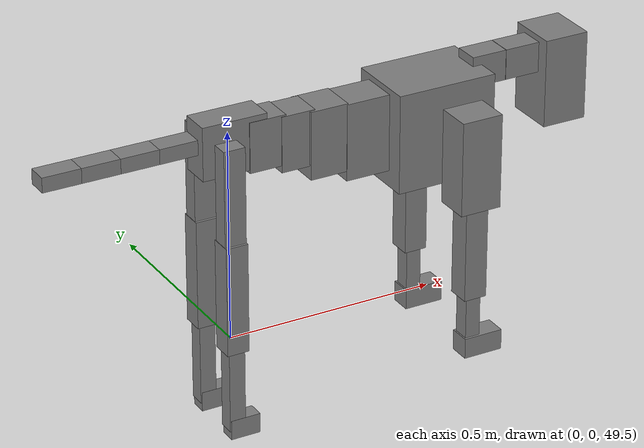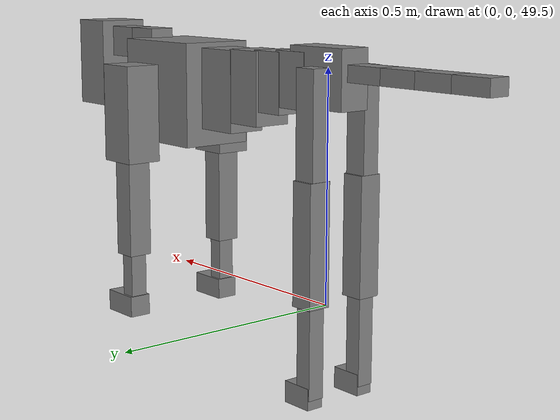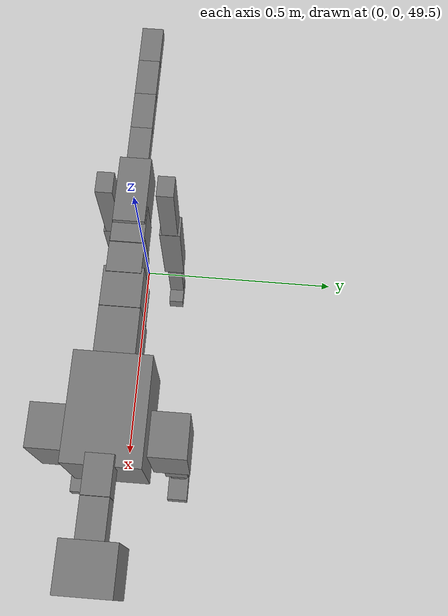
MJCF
<mujoco model="dog">

    <default>
        <joint armature="0.02" stiffness="1" damping="0.2" limited="true"/>
        <geom condim="3" friction="1 0.05 0.05" margin="0.01"/>
        <motor ctrllimited="true" ctrlrange="-1.0 1.0" forcelimited="true" gear="50"/>
    </default>

    <compiler inertiafromgeom="true" angle="radian"/>

    <option timestep="0.016" iterations="50" tolerance="1e-10" solver="Newton" jacobian="dense" cone="pyramidal"/>

    <size nconmax="20000" njmax="60000" nstack="5000000"/>
    <visual>
        <map force="0.1" zfar="30"/>
        <rgba haze="0.15 0.25 0.35 1"/>
        <quality shadowsize="2048"/>
        <global offwidth="800" offheight="800"/>
    </visual>

    <asset>
        <texture type="skybox" builtin="gradient" rgb1="0.3 0.5 0.7" rgb2="0 0 0" width="512" height="512"/>
        <texture name="texplane" type="2d" builtin="checker" rgb1=".2 .3 .4" rgb2=".1 0.15 0.2" width="512" height="512"
                 mark="cross" markrgb=".8 .8 .8"/>
        <texture name="texgeom" type="cube" builtin="flat" mark="cross" width="127" height="1278" rgb1="0.8 0.6 0.4"
                 rgb2="0.8 0.6 0.4" markrgb="1 1 1" random="0.01"/>

        <material name="matplane" reflectance="0.3" texture="texplane" texrepeat="1 1" texuniform="true"/>
        <material name="matgeom" texture="texgeom" texuniform="true" rgba="0.8 0.6 .4 1"/>
    </asset>

    <worldbody>
        <geom name="floor" pos="0 0 0" size="0 0 .25" type="plane" material="matplane" condim="3"/>

        <light directional="false" diffuse=".2 .2 .2" specular="0 0 0" pos="0 0 5" dir="0 0 -1" castshadow="false"/>
        <light mode="targetbodycom" target="torso" directional="false" diffuse=".8 .8 .8" specular="0.3 0.3 0.3"
               pos="0 0 4.0" dir="0 0 -1"/>

        <body name="root" pos="0 0 50">
            <freejoint name="root_1"/>
            <geom type="box" pos="0 0 -0.02" size="0.0774  0.0358  0.063" density="2030"/>

            <body name="spine1" pos="0.054 0 0">
                <joint name="spine1_y" axis="0 1 0" range="0 0.7" limited="true"/>
                <geom type="box" pos="0.02375 0 -0.03" size="0.04375  0.0375  0.05985" density="2030"/>

                <body name="spine2" pos="0.0612 0 0">
                    <joint name="spine2_y" axis="0 1 0" range="-0.15 0.15" limited="true"/>
                    <geom type="box" pos="0.03555  0  -0.04" size="0.04055  0.039  0.06615" density="2030"/>

                    <body name="spine3" pos="0.0730 0 0">
                        <joint name="spine3_y" axis="0 1 0" range="-0.15 0.15" limited="true"/>
                        <geom type="box" pos="0.03555  0  -0.057" size="0.04555  0.0445  0.081" density="2030"/>

                        <body name="spine4" pos="0.0780 0 0">
                            <joint name="spine4_y" axis="0 1 0" range="-0.15 0.15" limited="true"/>
                            <geom type="box" pos="0.05265  0  -0.07" size="0.05265  0.045  0.09135" density="2030"/>

                            <body name="torso" pos="0.1082 0 0">
                                <joint name="torso_y" axis="0 1 0" range="-0.15 0.15" limited="true"/>
                                <geom type="box" pos="0.11925  0  -0.085" size="0.11925  0.085  0.11745"
                                      density="2030"/>

                                <body name="neck1" pos="0.2160  0   0.0180">
                                    <joint name="neck1_y" axis="0 1 0" range="-1.2  -1" limited="true"/>
                                    <geom type="box" pos="0.0423  0  0" size="0.0423  0.03  0.036" density="2325"/>

                                    <body name="neck2" pos="0.0853  0  0">
                                        <joint name="neck2_y" axis="0 1 0" range="0.1  0" limited="true"/>
                                        <geom type="box" pos="0.0423  0  0" size="0.0423  0.03  0.036" density="2325"/>

                                        <body name="head" pos="0.0853  0  0">
                                            <joint name="head_y" axis="0 1 0" range="-0.3  -0.2" limited="true"/>
                                            <geom type="box" pos="0.0531  0  -0.055" size="0.0531  0.06  0.1044"
                                                  density="4030"/>

                                        </body>
                                    </body>
                                </body>

                                <body name="front_shoulder" pos="0.156  0   -0.0480">
                                    <joint name="front_shoulder_y" axis="0 1 0" range="-1 1.5" limited="true"/>
                                    <geom type="box" pos="0 0.13 -0.0853" size="0.0492  0.0421  0.1120" density="1158"/>
                                    <geom type="box" pos="0 -0.13 -0.0853" size="0.0492  0.0421  0.1120"
                                          density="1158"/>

                                    <body name="front_elbow" pos="0  0  -0.1706">
                                        <joint name="front_elbow_y" axis="0 1 0" range="-2 0" limited="true"/>
                                        <geom type="box" pos="0 0.13 -0.1248" size="0.0275  0.0281  0.1248"
                                              density="1081"/>
                                        <geom type="box" pos="0 -0.13 -0.1248" size="0.0275  0.0281  0.1248"
                                              density="1081"/>

                                        <body name="front_wrist" pos="0  0  -0.2495">
                                            <joint name="front_wrist_y" axis="0 1 0" range="-0.2 0" limited="true"/>
                                            <geom type="box" pos="0 0.13 -0.0573" size="0.0180  0.0200  0.0704"
                                                  density="1664"/>
                                            <geom type="box" pos="0 -0.13 -0.0573" size="0.0180  0.0200  0.0704"
                                                  density="1664"/>

                                            <body name="front_finger_end" pos="0  0  -0.1145">
                                                <joint name="front_finger_y" axis="0 1 0" range="-0.4 1"
                                                       limited="true"/>
                                                <geom type="box" pos="0.0257  0.13  -0.0094"
                                                      size="0.0472  0.0257  0.0244" density="1515"/>
                                                <geom type="box" pos="0.0257  -0.13  -0.0094"
                                                      size="0.0472  0.0257  0.0244" density="1515"/>

                                            </body>

                                        </body>
                                    </body>
                                </body>

                            </body>
                        </body>
                    </body>
                </body>
            </body>

            <body name="back_hip" pos="-0.03 0 -0.018">
                <joint name="back_hip_y" axis="0 1 0" range="-1.5 0.3" limited="true"/>
                <geom type="box" pos="0 0.07 -0.1099" size="0.0256  0.0201  0.1327" density="1154"/>
                <geom type="box" pos="0 -0.07 -0.1099" size="0.0256  0.0201  0.1327" density="1154"/>

                <body name="back_knee" pos="0  0  -0.2198">
                    <joint name="back_knee_y" axis="0 1 0" range="0 2.8" limited="true"/>
                    <geom type="box" pos="0 0.07 -0.1153" size="0.0263  0.0260  0.1309" density="1227"/>
                    <geom type="box" pos="0 -0.07 -0.1153" size="0.0263  0.0260  0.1309" density="1227"/>

                    <body name="back_ankle" pos="0  0  -0.2306">
                        <joint name="back_ankle_y" axis="0 1 0" range="-2.2 0" limited="true"/>
                        <geom type="box" pos="0 0.07 -0.0997" size="0.0191  0.0191  0.1110" density="1284"/>
                        <geom type="box" pos="0 -0.07 -0.0997" size="0.0191  0.0191  0.1110" density="1284"/>

                        <body name="back_toe_end" pos="0  0  -0.1995">
                            <joint name="back_toe_y" axis="0 1 0" range="-0.4 1" limited="true"/>
                            <geom type="box" pos="0.0194  0.07  -0.0085" size="0.0356  0.0194  0.0235" density="1515"/>
                            <geom type="box" pos="0.0194  -0.07  -0.0085" size="0.0356  0.0194  0.0235" density="1515"/>

                        </body>
                    </body>
                </body>
            </body>

            <body name="tail1" pos="-0.074 0 -0.006">
                <joint name="tail1_y" axis="0 1 0" range="-0.2 0.2" limited="true"/>
                <geom type="box" pos="-0.0536  0  0" size="0.045  0.025  0.0175" density="1587"/>

                <body name="tail2" pos="-0.09 0 0">
                    <joint name="tail2_y" axis="0 1 0" range="-0.2 0.2" limited="true"/>
                    <geom type="box" pos="-0.0536  0  0" size="0.045  0.025  0.0175" density="1587"/>

                    <body name="tail3" pos="-0.09 0 0">
                        <joint name="tail3_y" axis="0 1 0" range="-0.2 0.2" limited="true"/>
                        <geom type="box" pos="-0.0536  0  0" size="0.045  0.025  0.0175" density="1587"/>

                        <body name="tail4" pos="-0.09 0 0">
                            <joint name="tail4_y" axis="0 1 0" range="-0.2 0.2" limited="true"/>
                            <geom type="box" pos="-0.0536  0  0" size="0.045  0.025  0.0175" density="1587"/>

                        </body>
                    </body>
                </body>
            </body>
        </body>
    </worldbody>

    <actuator>
        <motor joint="spine1_y" forcerange="-150 150     "/>
        <motor joint="spine2_y" forcerange="-150 150     "/>
        <motor joint="spine3_y" forcerange="-150 150     "/>
        <motor joint="spine4_y" forcerange="-150 150     "/>
        <motor joint="torso_y" forcerange="-150 150     "/>
        <motor joint="neck1_y" forcerange="-100 100       "/>
        <motor joint="neck2_y" forcerange="-100 100       "/>
        <motor joint="head_y" forcerange="-150 150       "/>
        <motor joint="front_shoulder_y" forcerange="-182.20 198.26"/>
        <motor joint="front_elbow_y" forcerange="-179.48 124.78"/>
        <motor joint="front_wrist_y" forcerange="-80.14 80.00"/>
        <motor joint="front_finger_y" forcerange="-44.70 52.52"/>
        <motor joint="back_hip_y" forcerange="-200.31 267.31"/>
        <motor joint="back_knee_y" forcerange="-347.78 229.70"/>
        <motor joint="back_angle_y" forcerange="-52.43 153.89"/>
        <motor joint="back_toe_y" forcerange="-24.07 51.20"/>
        <motor joint="tail1_y" forcerange="-50 50     "/>
        <motor joint="tail2_y" forcerange="-50 50     "/>
        <motor joint="tail3_y" forcerange="-50 50     "/>
        <motor joint="tail4_y" forcerange="-50 50     "/>
    </actuator>
</mujoco>
